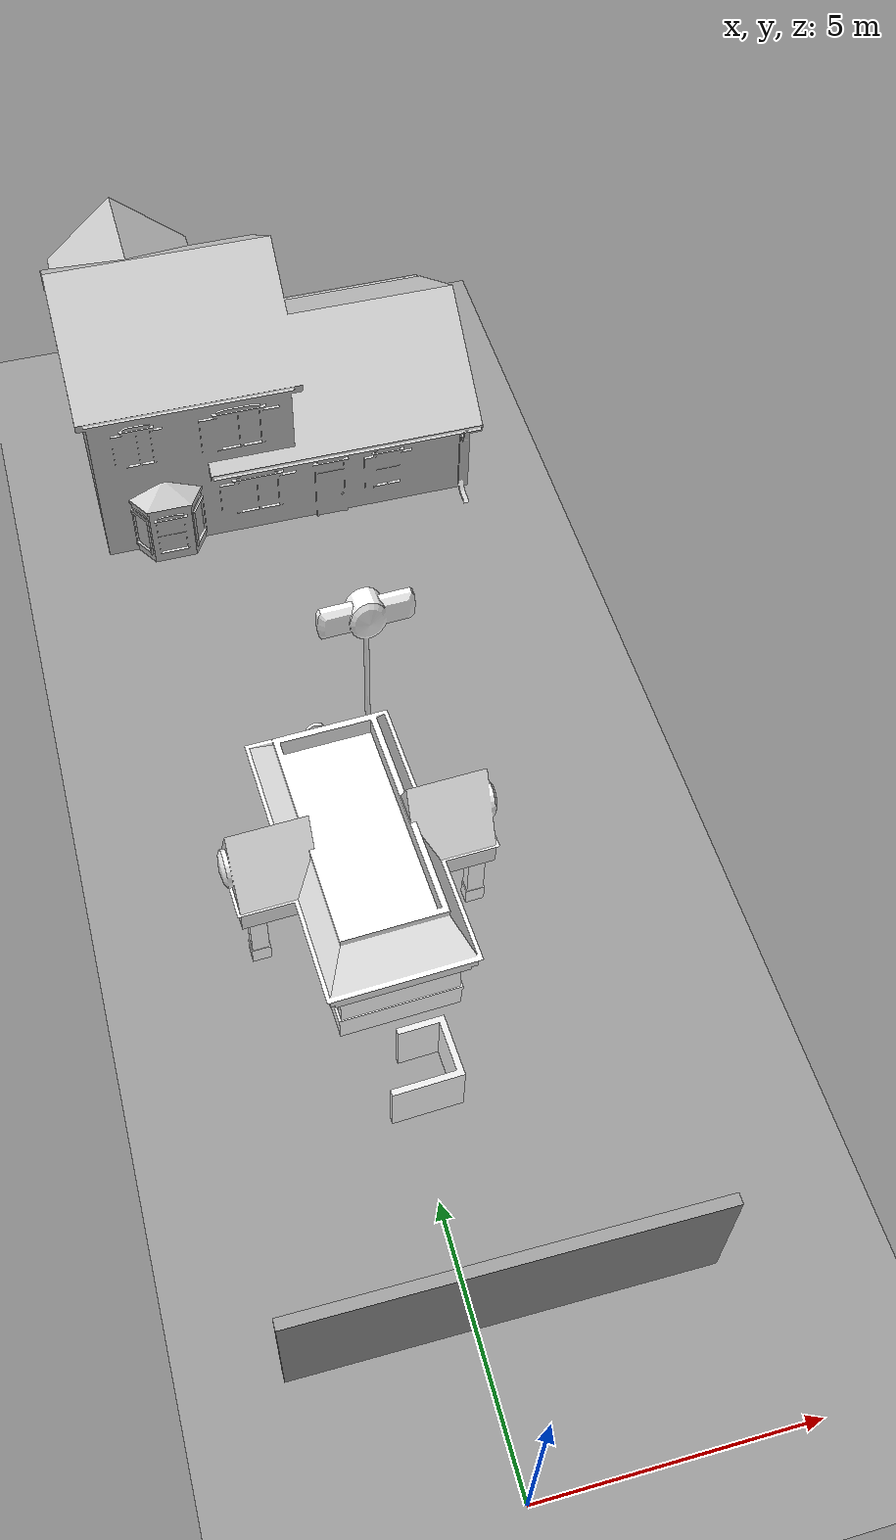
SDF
<sdf version="1.6">
 <world name="default">
  <light name="sun" type="directional">
   <pose>0 0 10 0 -0 0</pose>
   <diffuse>0.8 0.8 0.8 1</diffuse>
   <specular>0.1 0.1 0.1 1</specular>
   <attenuation>
    <range>1000</range>
    <constant>0.9</constant>
    <linear>0.01</linear>
    <quadratic>0.001</quadratic>
   </attenuation>
   <direction>-0.5 0.5 -1</direction>
  </light>
  <model name="ground_plane">
   <static>1</static>
   <link name="link">
    <collision name="collision">
     <geometry><plane><normal>0 0 1</normal><size>100 100</size></plane></geometry>
     <surface><friction><ode><mu>100</mu><mu2>50</mu2></ode></friction></surface>
    </collision>
    <visual name="visual">
     <cast_shadows>0</cast_shadows>
     <geometry><plane><normal>0 0 1</normal><size>100 100</size></plane></geometry>
     <material>
      <script><uri>file://media/materials/scripts/gazebo.material</uri><name>Gazebo/Grey</name></script>
     </material>
    </visual>
   </link>
  </model>
  <gravity>0 0 -9.8</gravity>
  <magnetic_field>6e-06 2.3e-05 -4.2e-05</magnetic_field>
  <atmosphere type="adiabatic"/>
  <physics name="default_physics" default="0" type="ode">
   <max_step_size>0.001</max_step_size>
   <real_time_factor>1</real_time_factor>
   <real_time_update_rate>1000</real_time_update_rate>
  </physics>
  <scene><ambient>0.4 0.4 0.4 1</ambient><background>0.7 0.7 0.7 1</background><shadows>1</shadows></scene>
  <spherical_coordinates>
   <surface_model>EARTH_WGS84</surface_model>
   <latitude_deg>0</latitude_deg>
   <longitude_deg>0</longitude_deg>
   <elevation>0</elevation>
   <heading_deg>0</heading_deg>
  </spherical_coordinates>
  <model name="grey_wall">
   <static>1</static>
   <link name="link">
    <pose>0 0 1.4 0 -0 0</pose>
    <collision name="collision"><geometry><box><size>7.5 0.2 2.8</size></box></geometry></collision>
    <visual name="visual">
     <cast_shadows>0</cast_shadows>
     <geometry><box><size>7.5 0.2 2.8</size></box></geometry>
     <material>
      <script>
       <uri>model://grey_wall/materials/scripts</uri>
       <uri>model://grey_wall/materials/textures</uri>
       <name>vrc/grey_wall</name>
      </script>
     </material>
    </visual>
   </link>
   <pose>0.497033 2.88204 0 0 -0 0</pose>
  </model>
  <model name="Fast Food">
   <static>1</static>
   <link name="link">
    <collision name="collision">
     <geometry><mesh><uri>model://fast_food/meshes/fast_food.dae</uri><scale>1 1 1</scale></mesh></geometry>
    </collision>
    <visual name="visual">
     <geometry><mesh><uri>model://fast_food/meshes/fast_food.dae</uri><scale>1 1 1</scale></mesh></geometry>
     <material>
      <script>
       <uri>model://fast_food/materials/scripts</uri>
       <uri>model://fast_food/materials/textures</uri>
       <name>FastFood/Diffuse</name>
      </script>
     </material>
    </visual>
   </link>
   <pose>0.349575 11.9781 0 0 -0 1.61533</pose>
  </model>
  <model name="House 3">
   <static>1</static>
   <link name="link">
    <collision name="collision">
     <geometry><mesh><uri>model://house_3/meshes/house_3.dae</uri><scale>1 1 1</scale></mesh></geometry>
    </collision>
    <visual name="visual">
     <geometry><mesh><uri>model://house_3/meshes/house_3.dae</uri><scale>1 1 1</scale></mesh></geometry>
     <material>
      <script>
       <uri>model://house_3/materials/scripts</uri>
       <uri>model://house_3/materials/textures</uri>
       <name>House_3/Diffuse</name>
      </script>
     </material>
    </visual>
   </link>
   <pose>1.43692 23.5517 0 0 -0 0</pose>
  </model>
 </world>
</sdf>
